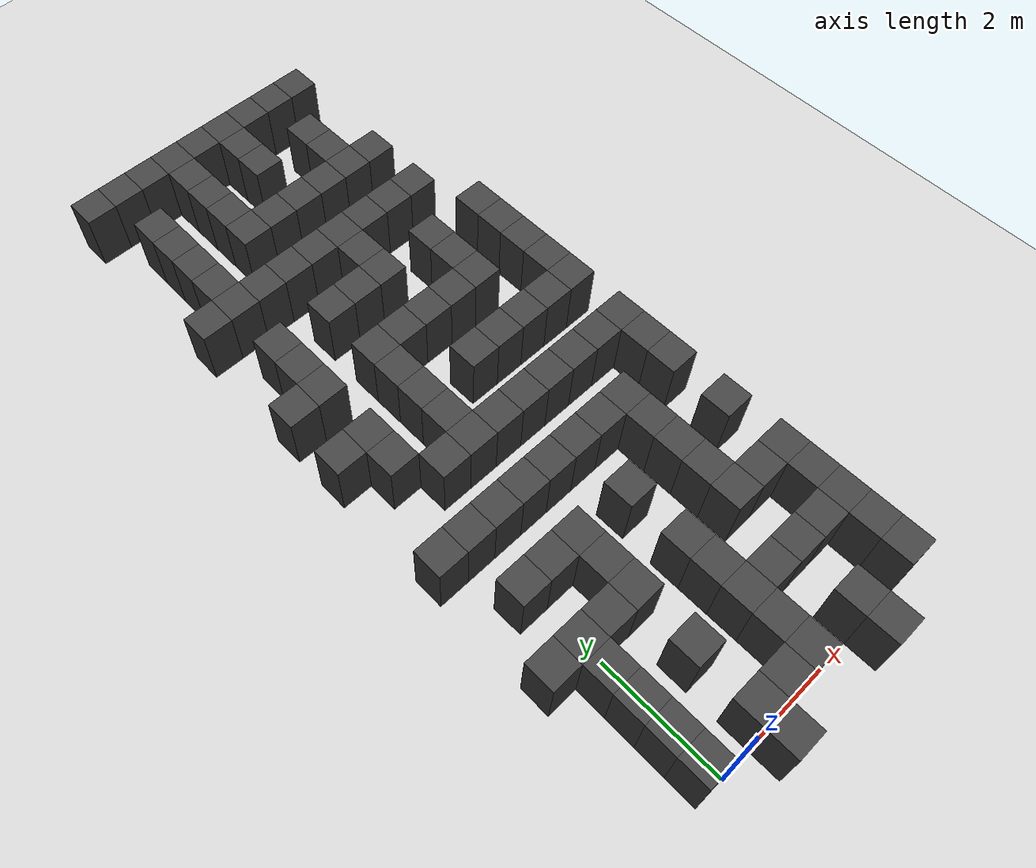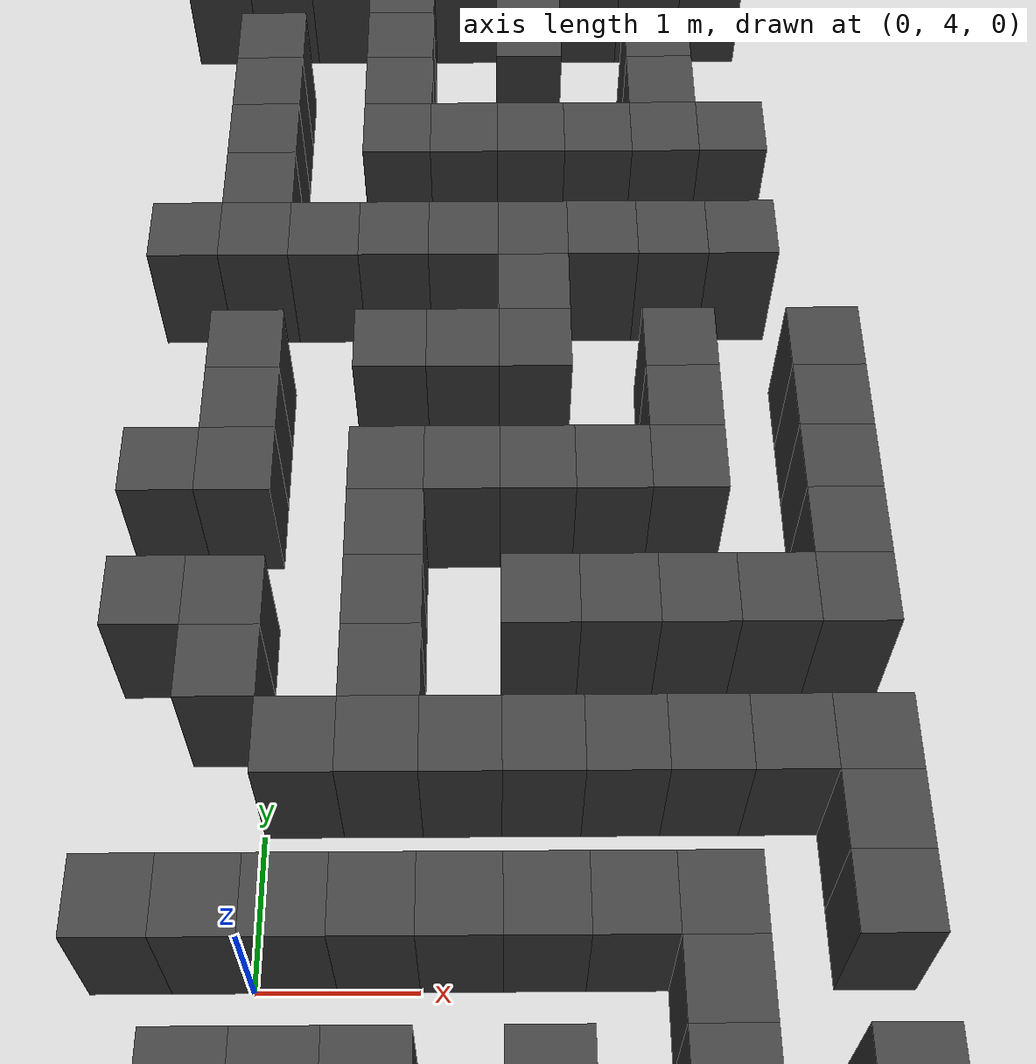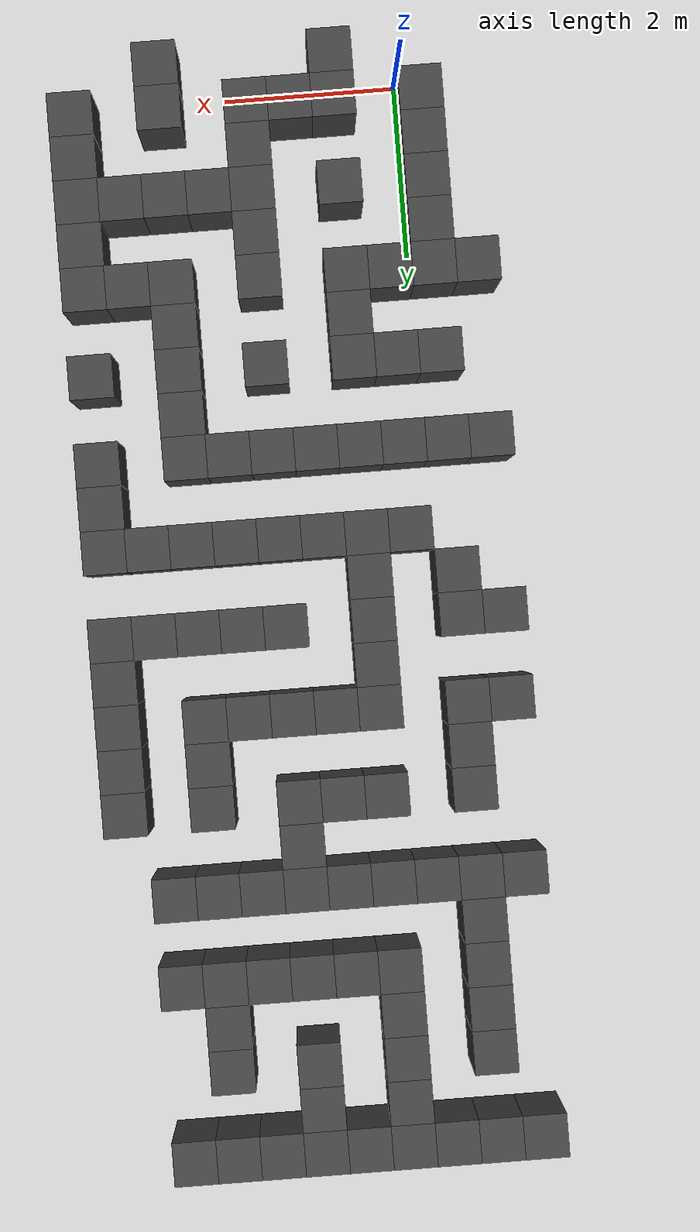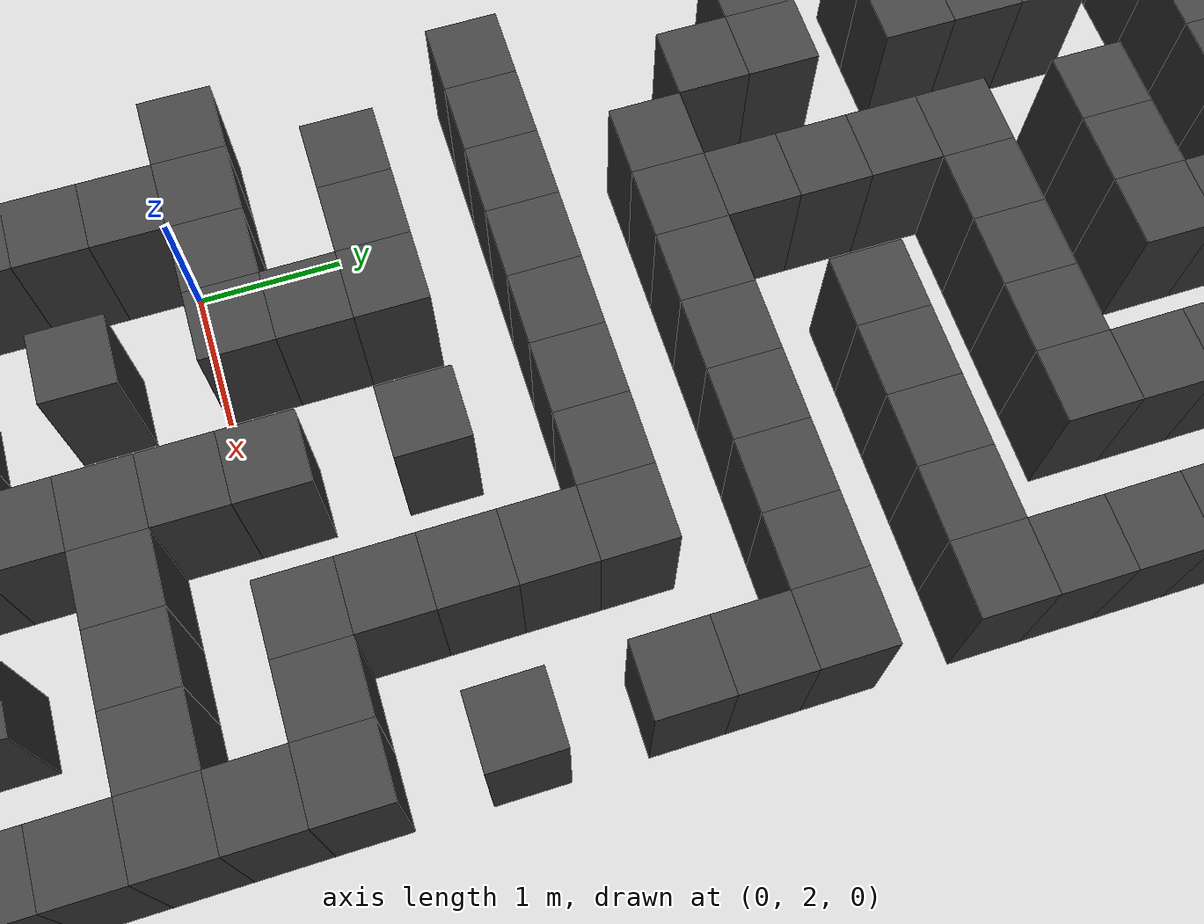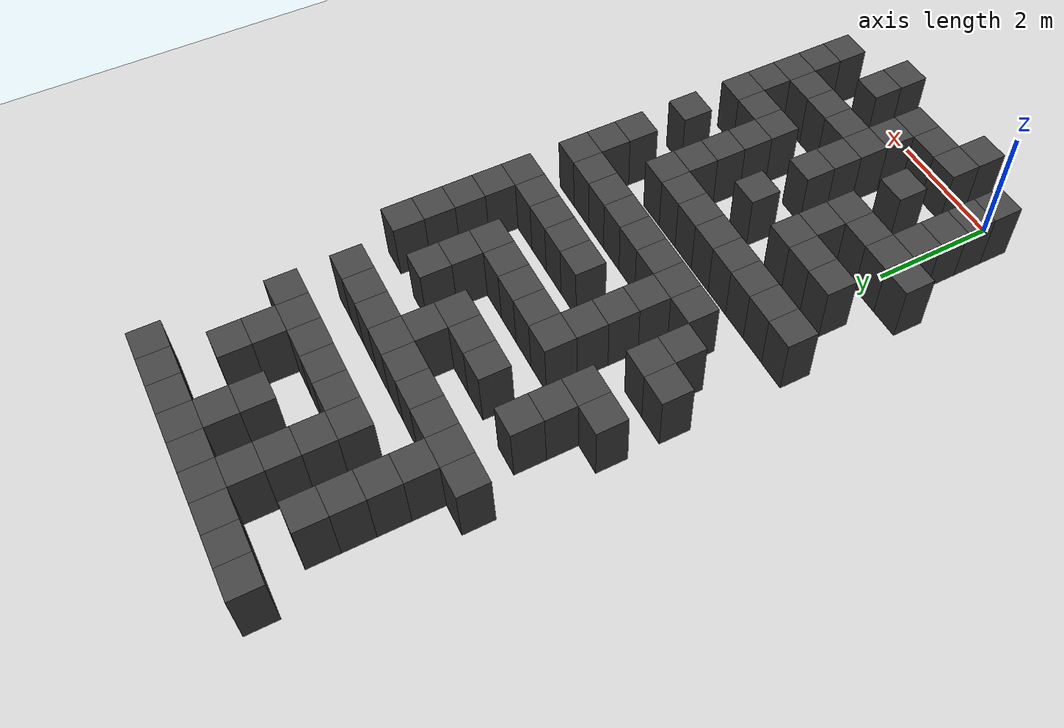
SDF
<sdf version="1.7">
 <world name="map_19217">
  <model name="ground_plane">
   <static>true</static>
   <link name="link">
    <collision name="collision">
     <geometry><plane><normal>0 0 1</normal><size>200 200</size></plane></geometry>
    </collision>
    <visual name="visual">
     <geometry><plane><normal>0 0 1</normal><size>200 200</size></plane></geometry>
     <material><ambient>0.8 0.8 0.8 1</ambient><diffuse>0.8 0.8 0.8 1</diffuse></material>
    </visual>
   </link>
  </model>
  <model name="maze_environment">
   <static>true</static>
   <link name="wall_23">
    <pose>-0.750 12.250 0.500 0 0 0</pose>
    <collision name="col"><geometry><box><size>0.5 0.5 1.0</size></box></geometry></collision>
    <visual name="vis">
     <geometry><box><size>0.5 0.5 1.0</size></box></geometry>
     <material><ambient>0.15 0.15 0.15 1</ambient><diffuse>0.25 0.25 0.25 1</diffuse></material>
    </visual>
   </link>
   <link name="wall_24">
    <pose>-0.250 12.250 0.500 0 0 0</pose>
    <collision name="col"><geometry><box><size>0.5 0.5 1.0</size></box></geometry></collision>
    <visual name="vis">
     <geometry><box><size>0.5 0.5 1.0</size></box></geometry>
     <material><ambient>0.15 0.15 0.15 1</ambient><diffuse>0.25 0.25 0.25 1</diffuse></material>
    </visual>
   </link>
   <link name="wall_25">
    <pose>0.250 12.250 0.500 0 0 0</pose>
    <collision name="col"><geometry><box><size>0.5 0.5 1.0</size></box></geometry></collision>
    <visual name="vis">
     <geometry><box><size>0.5 0.5 1.0</size></box></geometry>
     <material><ambient>0.15 0.15 0.15 1</ambient><diffuse>0.25 0.25 0.25 1</diffuse></material>
    </visual>
   </link>
   <link name="wall_26">
    <pose>0.750 12.250 0.500 0 0 0</pose>
    <collision name="col"><geometry><box><size>0.5 0.5 1.0</size></box></geometry></collision>
    <visual name="vis">
     <geometry><box><size>0.5 0.5 1.0</size></box></geometry>
     <material><ambient>0.15 0.15 0.15 1</ambient><diffuse>0.25 0.25 0.25 1</diffuse></material>
    </visual>
   </link>
   <link name="wall_27">
    <pose>1.250 12.250 0.500 0 0 0</pose>
    <collision name="col"><geometry><box><size>0.5 0.5 1.0</size></box></geometry></collision>
    <visual name="vis">
     <geometry><box><size>0.5 0.5 1.0</size></box></geometry>
     <material><ambient>0.15 0.15 0.15 1</ambient><diffuse>0.25 0.25 0.25 1</diffuse></material>
    </visual>
   </link>
   <link name="wall_28">
    <pose>1.750 12.250 0.500 0 0 0</pose>
    <collision name="col"><geometry><box><size>0.5 0.5 1.0</size></box></geometry></collision>
    <visual name="vis">
     <geometry><box><size>0.5 0.5 1.0</size></box></geometry>
     <material><ambient>0.15 0.15 0.15 1</ambient><diffuse>0.25 0.25 0.25 1</diffuse></material>
    </visual>
   </link>
   <link name="wall_29">
    <pose>2.250 12.250 0.500 0 0 0</pose>
    <collision name="col"><geometry><box><size>0.5 0.5 1.0</size></box></geometry></collision>
    <visual name="vis">
     <geometry><box><size>0.5 0.5 1.0</size></box></geometry>
     <material><ambient>0.15 0.15 0.15 1</ambient><diffuse>0.25 0.25 0.25 1</diffuse></material>
    </visual>
   </link>
   <link name="wall_30">
    <pose>2.750 12.250 0.500 0 0 0</pose>
    <collision name="col"><geometry><box><size>0.5 0.5 1.0</size></box></geometry></collision>
    <visual name="vis">
     <geometry><box><size>0.5 0.5 1.0</size></box></geometry>
     <material><ambient>0.15 0.15 0.15 1</ambient><diffuse>0.25 0.25 0.25 1</diffuse></material>
    </visual>
   </link>
   <link name="wall_31">
    <pose>3.250 12.250 0.500 0 0 0</pose>
    <collision name="col"><geometry><box><size>0.5 0.5 1.0</size></box></geometry></collision>
    <visual name="vis">
     <geometry><box><size>0.5 0.5 1.0</size></box></geometry>
     <material><ambient>0.15 0.15 0.15 1</ambient><diffuse>0.25 0.25 0.25 1</diffuse></material>
    </visual>
   </link>
   <link name="wall_54">
    <pose>0.750 11.750 0.500 0 0 0</pose>
    <collision name="col"><geometry><box><size>0.5 0.5 1.0</size></box></geometry></collision>
    <visual name="vis">
     <geometry><box><size>0.5 0.5 1.0</size></box></geometry>
     <material><ambient>0.15 0.15 0.15 1</ambient><diffuse>0.25 0.25 0.25 1</diffuse></material>
    </visual>
   </link>
   <link name="wall_55">
    <pose>1.750 11.750 0.500 0 0 0</pose>
    <collision name="col"><geometry><box><size>0.5 0.5 1.0</size></box></geometry></collision>
    <visual name="vis">
     <geometry><box><size>0.5 0.5 1.0</size></box></geometry>
     <material><ambient>0.15 0.15 0.15 1</ambient><diffuse>0.25 0.25 0.25 1</diffuse></material>
    </visual>
   </link>
   <link name="wall_74">
    <pose>-0.250 11.250 0.500 0 0 0</pose>
    <collision name="col"><geometry><box><size>0.5 0.5 1.0</size></box></geometry></collision>
    <visual name="vis">
     <geometry><box><size>0.5 0.5 1.0</size></box></geometry>
     <material><ambient>0.15 0.15 0.15 1</ambient><diffuse>0.25 0.25 0.25 1</diffuse></material>
    </visual>
   </link>
   <link name="wall_75">
    <pose>0.750 11.250 0.500 0 0 0</pose>
    <collision name="col"><geometry><box><size>0.5 0.5 1.0</size></box></geometry></collision>
    <visual name="vis">
     <geometry><box><size>0.5 0.5 1.0</size></box></geometry>
     <material><ambient>0.15 0.15 0.15 1</ambient><diffuse>0.25 0.25 0.25 1</diffuse></material>
    </visual>
   </link>
   <link name="wall_76">
    <pose>1.750 11.250 0.500 0 0 0</pose>
    <collision name="col"><geometry><box><size>0.5 0.5 1.0</size></box></geometry></collision>
    <visual name="vis">
     <geometry><box><size>0.5 0.5 1.0</size></box></geometry>
     <material><ambient>0.15 0.15 0.15 1</ambient><diffuse>0.25 0.25 0.25 1</diffuse></material>
    </visual>
   </link>
   <link name="wall_77">
    <pose>2.750 11.250 0.500 0 0 0</pose>
    <collision name="col"><geometry><box><size>0.5 0.5 1.0</size></box></geometry></collision>
    <visual name="vis">
     <geometry><box><size>0.5 0.5 1.0</size></box></geometry>
     <material><ambient>0.15 0.15 0.15 1</ambient><diffuse>0.25 0.25 0.25 1</diffuse></material>
    </visual>
   </link>
   <link name="wall_100">
    <pose>-0.250 10.750 0.500 0 0 0</pose>
    <collision name="col"><geometry><box><size>0.5 0.5 1.0</size></box></geometry></collision>
    <visual name="vis">
     <geometry><box><size>0.5 0.5 1.0</size></box></geometry>
     <material><ambient>0.15 0.15 0.15 1</ambient><diffuse>0.25 0.25 0.25 1</diffuse></material>
    </visual>
   </link>
   <link name="wall_101">
    <pose>0.750 10.750 0.500 0 0 0</pose>
    <collision name="col"><geometry><box><size>0.5 0.5 1.0</size></box></geometry></collision>
    <visual name="vis">
     <geometry><box><size>0.5 0.5 1.0</size></box></geometry>
     <material><ambient>0.15 0.15 0.15 1</ambient><diffuse>0.25 0.25 0.25 1</diffuse></material>
    </visual>
   </link>
   <link name="wall_102">
    <pose>2.750 10.750 0.500 0 0 0</pose>
    <collision name="col"><geometry><box><size>0.5 0.5 1.0</size></box></geometry></collision>
    <visual name="vis">
     <geometry><box><size>0.5 0.5 1.0</size></box></geometry>
     <material><ambient>0.15 0.15 0.15 1</ambient><diffuse>0.25 0.25 0.25 1</diffuse></material>
    </visual>
   </link>
   <link name="wall_125">
    <pose>-0.250 10.250 0.500 0 0 0</pose>
    <collision name="col"><geometry><box><size>0.5 0.5 1.0</size></box></geometry></collision>
    <visual name="vis">
     <geometry><box><size>0.5 0.5 1.0</size></box></geometry>
     <material><ambient>0.15 0.15 0.15 1</ambient><diffuse>0.25 0.25 0.25 1</diffuse></material>
    </visual>
   </link>
   <link name="wall_126">
    <pose>0.750 10.250 0.500 0 0 0</pose>
    <collision name="col"><geometry><box><size>0.5 0.5 1.0</size></box></geometry></collision>
    <visual name="vis">
     <geometry><box><size>0.5 0.5 1.0</size></box></geometry>
     <material><ambient>0.15 0.15 0.15 1</ambient><diffuse>0.25 0.25 0.25 1</diffuse></material>
    </visual>
   </link>
   <link name="wall_127">
    <pose>1.250 10.250 0.500 0 0 0</pose>
    <collision name="col"><geometry><box><size>0.5 0.5 1.0</size></box></geometry></collision>
    <visual name="vis">
     <geometry><box><size>0.5 0.5 1.0</size></box></geometry>
     <material><ambient>0.15 0.15 0.15 1</ambient><diffuse>0.25 0.25 0.25 1</diffuse></material>
    </visual>
   </link>
   <link name="wall_128">
    <pose>1.750 10.250 0.500 0 0 0</pose>
    <collision name="col"><geometry><box><size>0.5 0.5 1.0</size></box></geometry></collision>
    <visual name="vis">
     <geometry><box><size>0.5 0.5 1.0</size></box></geometry>
     <material><ambient>0.15 0.15 0.15 1</ambient><diffuse>0.25 0.25 0.25 1</diffuse></material>
    </visual>
   </link>
   <link name="wall_129">
    <pose>2.250 10.250 0.500 0 0 0</pose>
    <collision name="col"><geometry><box><size>0.5 0.5 1.0</size></box></geometry></collision>
    <visual name="vis">
     <geometry><box><size>0.5 0.5 1.0</size></box></geometry>
     <material><ambient>0.15 0.15 0.15 1</ambient><diffuse>0.25 0.25 0.25 1</diffuse></material>
    </visual>
   </link>
   <link name="wall_130">
    <pose>2.750 10.250 0.500 0 0 0</pose>
    <collision name="col"><geometry><box><size>0.5 0.5 1.0</size></box></geometry></collision>
    <visual name="vis">
     <geometry><box><size>0.5 0.5 1.0</size></box></geometry>
     <material><ambient>0.15 0.15 0.15 1</ambient><diffuse>0.25 0.25 0.25 1</diffuse></material>
    </visual>
   </link>
   <link name="wall_131">
    <pose>3.250 10.250 0.500 0 0 0</pose>
    <collision name="col"><geometry><box><size>0.5 0.5 1.0</size></box></geometry></collision>
    <visual name="vis">
     <geometry><box><size>0.5 0.5 1.0</size></box></geometry>
     <material><ambient>0.15 0.15 0.15 1</ambient><diffuse>0.25 0.25 0.25 1</diffuse></material>
    </visual>
   </link>
   <link name="wall_152">
    <pose>-0.250 9.750 0.500 0 0 0</pose>
    <collision name="col"><geometry><box><size>0.5 0.5 1.0</size></box></geometry></collision>
    <visual name="vis">
     <geometry><box><size>0.5 0.5 1.0</size></box></geometry>
     <material><ambient>0.15 0.15 0.15 1</ambient><diffuse>0.25 0.25 0.25 1</diffuse></material>
    </visual>
   </link>
   <link name="wall_176">
    <pose>-0.750 9.250 0.500 0 0 0</pose>
    <collision name="col"><geometry><box><size>0.5 0.5 1.0</size></box></geometry></collision>
    <visual name="vis">
     <geometry><box><size>0.5 0.5 1.0</size></box></geometry>
     <material><ambient>0.15 0.15 0.15 1</ambient><diffuse>0.25 0.25 0.25 1</diffuse></material>
    </visual>
   </link>
   <link name="wall_177">
    <pose>-0.250 9.250 0.500 0 0 0</pose>
    <collision name="col"><geometry><box><size>0.5 0.5 1.0</size></box></geometry></collision>
    <visual name="vis">
     <geometry><box><size>0.5 0.5 1.0</size></box></geometry>
     <material><ambient>0.15 0.15 0.15 1</ambient><diffuse>0.25 0.25 0.25 1</diffuse></material>
    </visual>
   </link>
   <link name="wall_178">
    <pose>0.250 9.250 0.500 0 0 0</pose>
    <collision name="col"><geometry><box><size>0.5 0.5 1.0</size></box></geometry></collision>
    <visual name="vis">
     <geometry><box><size>0.5 0.5 1.0</size></box></geometry>
     <material><ambient>0.15 0.15 0.15 1</ambient><diffuse>0.25 0.25 0.25 1</diffuse></material>
    </visual>
   </link>
   <link name="wall_179">
    <pose>0.750 9.250 0.500 0 0 0</pose>
    <collision name="col"><geometry><box><size>0.5 0.5 1.0</size></box></geometry></collision>
    <visual name="vis">
     <geometry><box><size>0.5 0.5 1.0</size></box></geometry>
     <material><ambient>0.15 0.15 0.15 1</ambient><diffuse>0.25 0.25 0.25 1</diffuse></material>
    </visual>
   </link>
   <link name="wall_180">
    <pose>1.250 9.250 0.500 0 0 0</pose>
    <collision name="col"><geometry><box><size>0.5 0.5 1.0</size></box></geometry></collision>
    <visual name="vis">
     <geometry><box><size>0.5 0.5 1.0</size></box></geometry>
     <material><ambient>0.15 0.15 0.15 1</ambient><diffuse>0.25 0.25 0.25 1</diffuse></material>
    </visual>
   </link>
   <link name="wall_181">
    <pose>1.750 9.250 0.500 0 0 0</pose>
    <collision name="col"><geometry><box><size>0.5 0.5 1.0</size></box></geometry></collision>
    <visual name="vis">
     <geometry><box><size>0.5 0.5 1.0</size></box></geometry>
     <material><ambient>0.15 0.15 0.15 1</ambient><diffuse>0.25 0.25 0.25 1</diffuse></material>
    </visual>
   </link>
   <link name="wall_182">
    <pose>2.250 9.250 0.500 0 0 0</pose>
    <collision name="col"><geometry><box><size>0.5 0.5 1.0</size></box></geometry></collision>
    <visual name="vis">
     <geometry><box><size>0.5 0.5 1.0</size></box></geometry>
     <material><ambient>0.15 0.15 0.15 1</ambient><diffuse>0.25 0.25 0.25 1</diffuse></material>
    </visual>
   </link>
   <link name="wall_183">
    <pose>2.750 9.250 0.500 0 0 0</pose>
    <collision name="col"><geometry><box><size>0.5 0.5 1.0</size></box></geometry></collision>
    <visual name="vis">
     <geometry><box><size>0.5 0.5 1.0</size></box></geometry>
     <material><ambient>0.15 0.15 0.15 1</ambient><diffuse>0.25 0.25 0.25 1</diffuse></material>
    </visual>
   </link>
   <link name="wall_184">
    <pose>3.250 9.250 0.500 0 0 0</pose>
    <collision name="col"><geometry><box><size>0.5 0.5 1.0</size></box></geometry></collision>
    <visual name="vis">
     <geometry><box><size>0.5 0.5 1.0</size></box></geometry>
     <material><ambient>0.15 0.15 0.15 1</ambient><diffuse>0.25 0.25 0.25 1</diffuse></material>
    </visual>
   </link>
   <link name="wall_206">
    <pose>1.750 8.750 0.500 0 0 0</pose>
    <collision name="col"><geometry><box><size>0.5 0.5 1.0</size></box></geometry></collision>
    <visual name="vis">
     <geometry><box><size>0.5 0.5 1.0</size></box></geometry>
     <material><ambient>0.15 0.15 0.15 1</ambient><diffuse>0.25 0.25 0.25 1</diffuse></material>
    </visual>
   </link>
   <link name="wall_228">
    <pose>-0.250 8.250 0.500 0 0 0</pose>
    <collision name="col"><geometry><box><size>0.5 0.5 1.0</size></box></geometry></collision>
    <visual name="vis">
     <geometry><box><size>0.5 0.5 1.0</size></box></geometry>
     <material><ambient>0.15 0.15 0.15 1</ambient><diffuse>0.25 0.25 0.25 1</diffuse></material>
    </visual>
   </link>
   <link name="wall_229">
    <pose>0.750 8.250 0.500 0 0 0</pose>
    <collision name="col"><geometry><box><size>0.5 0.5 1.0</size></box></geometry></collision>
    <visual name="vis">
     <geometry><box><size>0.5 0.5 1.0</size></box></geometry>
     <material><ambient>0.15 0.15 0.15 1</ambient><diffuse>0.25 0.25 0.25 1</diffuse></material>
    </visual>
   </link>
   <link name="wall_230">
    <pose>1.250 8.250 0.500 0 0 0</pose>
    <collision name="col"><geometry><box><size>0.5 0.5 1.0</size></box></geometry></collision>
    <visual name="vis">
     <geometry><box><size>0.5 0.5 1.0</size></box></geometry>
     <material><ambient>0.15 0.15 0.15 1</ambient><diffuse>0.25 0.25 0.25 1</diffuse></material>
    </visual>
   </link>
   <link name="wall_231">
    <pose>1.750 8.250 0.500 0 0 0</pose>
    <collision name="col"><geometry><box><size>0.5 0.5 1.0</size></box></geometry></collision>
    <visual name="vis">
     <geometry><box><size>0.5 0.5 1.0</size></box></geometry>
     <material><ambient>0.15 0.15 0.15 1</ambient><diffuse>0.25 0.25 0.25 1</diffuse></material>
    </visual>
   </link>
   <link name="wall_232">
    <pose>2.750 8.250 0.500 0 0 0</pose>
    <collision name="col"><geometry><box><size>0.5 0.5 1.0</size></box></geometry></collision>
    <visual name="vis">
     <geometry><box><size>0.5 0.5 1.0</size></box></geometry>
     <material><ambient>0.15 0.15 0.15 1</ambient><diffuse>0.25 0.25 0.25 1</diffuse></material>
    </visual>
   </link>
   <link name="wall_233">
    <pose>3.750 8.250 0.500 0 0 0</pose>
    <collision name="col"><geometry><box><size>0.5 0.5 1.0</size></box></geometry></collision>
    <visual name="vis">
     <geometry><box><size>0.5 0.5 1.0</size></box></geometry>
     <material><ambient>0.15 0.15 0.15 1</ambient><diffuse>0.25 0.25 0.25 1</diffuse></material>
    </visual>
   </link>
   <link name="wall_254">
    <pose>-0.250 7.750 0.500 0 0 0</pose>
    <collision name="col"><geometry><box><size>0.5 0.5 1.0</size></box></geometry></collision>
    <visual name="vis">
     <geometry><box><size>0.5 0.5 1.0</size></box></geometry>
     <material><ambient>0.15 0.15 0.15 1</ambient><diffuse>0.25 0.25 0.25 1</diffuse></material>
    </visual>
   </link>
   <link name="wall_255">
    <pose>2.750 7.750 0.500 0 0 0</pose>
    <collision name="col"><geometry><box><size>0.5 0.5 1.0</size></box></geometry></collision>
    <visual name="vis">
     <geometry><box><size>0.5 0.5 1.0</size></box></geometry>
     <material><ambient>0.15 0.15 0.15 1</ambient><diffuse>0.25 0.25 0.25 1</diffuse></material>
    </visual>
   </link>
   <link name="wall_256">
    <pose>3.750 7.750 0.500 0 0 0</pose>
    <collision name="col"><geometry><box><size>0.5 0.5 1.0</size></box></geometry></collision>
    <visual name="vis">
     <geometry><box><size>0.5 0.5 1.0</size></box></geometry>
     <material><ambient>0.15 0.15 0.15 1</ambient><diffuse>0.25 0.25 0.25 1</diffuse></material>
    </visual>
   </link>
   <link name="wall_277">
    <pose>-0.750 7.250 0.500 0 0 0</pose>
    <collision name="col"><geometry><box><size>0.5 0.5 1.0</size></box></geometry></collision>
    <visual name="vis">
     <geometry><box><size>0.5 0.5 1.0</size></box></geometry>
     <material><ambient>0.15 0.15 0.15 1</ambient><diffuse>0.25 0.25 0.25 1</diffuse></material>
    </visual>
   </link>
   <link name="wall_278">
    <pose>-0.250 7.250 0.500 0 0 0</pose>
    <collision name="col"><geometry><box><size>0.5 0.5 1.0</size></box></geometry></collision>
    <visual name="vis">
     <geometry><box><size>0.5 0.5 1.0</size></box></geometry>
     <material><ambient>0.15 0.15 0.15 1</ambient><diffuse>0.25 0.25 0.25 1</diffuse></material>
    </visual>
   </link>
   <link name="wall_279">
    <pose>0.750 7.250 0.500 0 0 0</pose>
    <collision name="col"><geometry><box><size>0.5 0.5 1.0</size></box></geometry></collision>
    <visual name="vis">
     <geometry><box><size>0.5 0.5 1.0</size></box></geometry>
     <material><ambient>0.15 0.15 0.15 1</ambient><diffuse>0.25 0.25 0.25 1</diffuse></material>
    </visual>
   </link>
   <link name="wall_280">
    <pose>1.250 7.250 0.500 0 0 0</pose>
    <collision name="col"><geometry><box><size>0.5 0.5 1.0</size></box></geometry></collision>
    <visual name="vis">
     <geometry><box><size>0.5 0.5 1.0</size></box></geometry>
     <material><ambient>0.15 0.15 0.15 1</ambient><diffuse>0.25 0.25 0.25 1</diffuse></material>
    </visual>
   </link>
   <link name="wall_281">
    <pose>1.750 7.250 0.500 0 0 0</pose>
    <collision name="col"><geometry><box><size>0.5 0.5 1.0</size></box></geometry></collision>
    <visual name="vis">
     <geometry><box><size>0.5 0.5 1.0</size></box></geometry>
     <material><ambient>0.15 0.15 0.15 1</ambient><diffuse>0.25 0.25 0.25 1</diffuse></material>
    </visual>
   </link>
   <link name="wall_282">
    <pose>2.250 7.250 0.500 0 0 0</pose>
    <collision name="col"><geometry><box><size>0.5 0.5 1.0</size></box></geometry></collision>
    <visual name="vis">
     <geometry><box><size>0.5 0.5 1.0</size></box></geometry>
     <material><ambient>0.15 0.15 0.15 1</ambient><diffuse>0.25 0.25 0.25 1</diffuse></material>
    </visual>
   </link>
   <link name="wall_283">
    <pose>2.750 7.250 0.500 0 0 0</pose>
    <collision name="col"><geometry><box><size>0.5 0.5 1.0</size></box></geometry></collision>
    <visual name="vis">
     <geometry><box><size>0.5 0.5 1.0</size></box></geometry>
     <material><ambient>0.15 0.15 0.15 1</ambient><diffuse>0.25 0.25 0.25 1</diffuse></material>
    </visual>
   </link>
   <link name="wall_284">
    <pose>3.750 7.250 0.500 0 0 0</pose>
    <collision name="col"><geometry><box><size>0.5 0.5 1.0</size></box></geometry></collision>
    <visual name="vis">
     <geometry><box><size>0.5 0.5 1.0</size></box></geometry>
     <material><ambient>0.15 0.15 0.15 1</ambient><diffuse>0.25 0.25 0.25 1</diffuse></material>
    </visual>
   </link>
   <link name="wall_304">
    <pose>0.750 6.750 0.500 0 0 0</pose>
    <collision name="col"><geometry><box><size>0.5 0.5 1.0</size></box></geometry></collision>
    <visual name="vis">
     <geometry><box><size>0.5 0.5 1.0</size></box></geometry>
     <material><ambient>0.15 0.15 0.15 1</ambient><diffuse>0.25 0.25 0.25 1</diffuse></material>
    </visual>
   </link>
   <link name="wall_305">
    <pose>3.750 6.750 0.500 0 0 0</pose>
    <collision name="col"><geometry><box><size>0.5 0.5 1.0</size></box></geometry></collision>
    <visual name="vis">
     <geometry><box><size>0.5 0.5 1.0</size></box></geometry>
     <material><ambient>0.15 0.15 0.15 1</ambient><diffuse>0.25 0.25 0.25 1</diffuse></material>
    </visual>
   </link>
   <link name="wall_329">
    <pose>-0.750 6.250 0.500 0 0 0</pose>
    <collision name="col"><geometry><box><size>0.5 0.5 1.0</size></box></geometry></collision>
    <visual name="vis">
     <geometry><box><size>0.5 0.5 1.0</size></box></geometry>
     <material><ambient>0.15 0.15 0.15 1</ambient><diffuse>0.25 0.25 0.25 1</diffuse></material>
    </visual>
   </link>
   <link name="wall_330">
    <pose>-0.250 6.250 0.500 0 0 0</pose>
    <collision name="col"><geometry><box><size>0.5 0.5 1.0</size></box></geometry></collision>
    <visual name="vis">
     <geometry><box><size>0.5 0.5 1.0</size></box></geometry>
     <material><ambient>0.15 0.15 0.15 1</ambient><diffuse>0.25 0.25 0.25 1</diffuse></material>
    </visual>
   </link>
   <link name="wall_331">
    <pose>0.750 6.250 0.500 0 0 0</pose>
    <collision name="col"><geometry><box><size>0.5 0.5 1.0</size></box></geometry></collision>
    <visual name="vis">
     <geometry><box><size>0.5 0.5 1.0</size></box></geometry>
     <material><ambient>0.15 0.15 0.15 1</ambient><diffuse>0.25 0.25 0.25 1</diffuse></material>
    </visual>
   </link>
   <link name="wall_332">
    <pose>1.750 6.250 0.500 0 0 0</pose>
    <collision name="col"><geometry><box><size>0.5 0.5 1.0</size></box></geometry></collision>
    <visual name="vis">
     <geometry><box><size>0.5 0.5 1.0</size></box></geometry>
     <material><ambient>0.15 0.15 0.15 1</ambient><diffuse>0.25 0.25 0.25 1</diffuse></material>
    </visual>
   </link>
   <link name="wall_333">
    <pose>2.250 6.250 0.500 0 0 0</pose>
    <collision name="col"><geometry><box><size>0.5 0.5 1.0</size></box></geometry></collision>
    <visual name="vis">
     <geometry><box><size>0.5 0.5 1.0</size></box></geometry>
     <material><ambient>0.15 0.15 0.15 1</ambient><diffuse>0.25 0.25 0.25 1</diffuse></material>
    </visual>
   </link>
   <link name="wall_334">
    <pose>2.750 6.250 0.500 0 0 0</pose>
    <collision name="col"><geometry><box><size>0.5 0.5 1.0</size></box></geometry></collision>
    <visual name="vis">
     <geometry><box><size>0.5 0.5 1.0</size></box></geometry>
     <material><ambient>0.15 0.15 0.15 1</ambient><diffuse>0.25 0.25 0.25 1</diffuse></material>
    </visual>
   </link>
   <link name="wall_335">
    <pose>3.250 6.250 0.500 0 0 0</pose>
    <collision name="col"><geometry><box><size>0.5 0.5 1.0</size></box></geometry></collision>
    <visual name="vis">
     <geometry><box><size>0.5 0.5 1.0</size></box></geometry>
     <material><ambient>0.15 0.15 0.15 1</ambient><diffuse>0.25 0.25 0.25 1</diffuse></material>
    </visual>
   </link>
   <link name="wall_336">
    <pose>3.750 6.250 0.500 0 0 0</pose>
    <collision name="col"><geometry><box><size>0.5 0.5 1.0</size></box></geometry></collision>
    <visual name="vis">
     <geometry><box><size>0.5 0.5 1.0</size></box></geometry>
     <material><ambient>0.15 0.15 0.15 1</ambient><diffuse>0.25 0.25 0.25 1</diffuse></material>
    </visual>
   </link>
   <link name="wall_357">
    <pose>-0.250 5.750 0.500 0 0 0</pose>
    <collision name="col"><geometry><box><size>0.5 0.5 1.0</size></box></geometry></collision>
    <visual name="vis">
     <geometry><box><size>0.5 0.5 1.0</size></box></geometry>
     <material><ambient>0.15 0.15 0.15 1</ambient><diffuse>0.25 0.25 0.25 1</diffuse></material>
    </visual>
   </link>
   <link name="wall_358">
    <pose>0.750 5.750 0.500 0 0 0</pose>
    <collision name="col"><geometry><box><size>0.5 0.5 1.0</size></box></geometry></collision>
    <visual name="vis">
     <geometry><box><size>0.5 0.5 1.0</size></box></geometry>
     <material><ambient>0.15 0.15 0.15 1</ambient><diffuse>0.25 0.25 0.25 1</diffuse></material>
    </visual>
   </link>
   <link name="wall_379">
    <pose>0.250 5.250 0.500 0 0 0</pose>
    <collision name="col"><geometry><box><size>0.5 0.5 1.0</size></box></geometry></collision>
    <visual name="vis">
     <geometry><box><size>0.5 0.5 1.0</size></box></geometry>
     <material><ambient>0.15 0.15 0.15 1</ambient><diffuse>0.25 0.25 0.25 1</diffuse></material>
    </visual>
   </link>
   <link name="wall_380">
    <pose>0.750 5.250 0.500 0 0 0</pose>
    <collision name="col"><geometry><box><size>0.5 0.5 1.0</size></box></geometry></collision>
    <visual name="vis">
     <geometry><box><size>0.5 0.5 1.0</size></box></geometry>
     <material><ambient>0.15 0.15 0.15 1</ambient><diffuse>0.25 0.25 0.25 1</diffuse></material>
    </visual>
   </link>
   <link name="wall_381">
    <pose>1.250 5.250 0.500 0 0 0</pose>
    <collision name="col"><geometry><box><size>0.5 0.5 1.0</size></box></geometry></collision>
    <visual name="vis">
     <geometry><box><size>0.5 0.5 1.0</size></box></geometry>
     <material><ambient>0.15 0.15 0.15 1</ambient><diffuse>0.25 0.25 0.25 1</diffuse></material>
    </visual>
   </link>
   <link name="wall_382">
    <pose>1.750 5.250 0.500 0 0 0</pose>
    <collision name="col"><geometry><box><size>0.5 0.5 1.0</size></box></geometry></collision>
    <visual name="vis">
     <geometry><box><size>0.5 0.5 1.0</size></box></geometry>
     <material><ambient>0.15 0.15 0.15 1</ambient><diffuse>0.25 0.25 0.25 1</diffuse></material>
    </visual>
   </link>
   <link name="wall_383">
    <pose>2.250 5.250 0.500 0 0 0</pose>
    <collision name="col"><geometry><box><size>0.5 0.5 1.0</size></box></geometry></collision>
    <visual name="vis">
     <geometry><box><size>0.5 0.5 1.0</size></box></geometry>
     <material><ambient>0.15 0.15 0.15 1</ambient><diffuse>0.25 0.25 0.25 1</diffuse></material>
    </visual>
   </link>
   <link name="wall_384">
    <pose>2.750 5.250 0.500 0 0 0</pose>
    <collision name="col"><geometry><box><size>0.5 0.5 1.0</size></box></geometry></collision>
    <visual name="vis">
     <geometry><box><size>0.5 0.5 1.0</size></box></geometry>
     <material><ambient>0.15 0.15 0.15 1</ambient><diffuse>0.25 0.25 0.25 1</diffuse></material>
    </visual>
   </link>
   <link name="wall_385">
    <pose>3.250 5.250 0.500 0 0 0</pose>
    <collision name="col"><geometry><box><size>0.5 0.5 1.0</size></box></geometry></collision>
    <visual name="vis">
     <geometry><box><size>0.5 0.5 1.0</size></box></geometry>
     <material><ambient>0.15 0.15 0.15 1</ambient><diffuse>0.25 0.25 0.25 1</diffuse></material>
    </visual>
   </link>
   <link name="wall_386">
    <pose>3.750 5.250 0.500 0 0 0</pose>
    <collision name="col"><geometry><box><size>0.5 0.5 1.0</size></box></geometry></collision>
    <visual name="vis">
     <geometry><box><size>0.5 0.5 1.0</size></box></geometry>
     <material><ambient>0.15 0.15 0.15 1</ambient><diffuse>0.25 0.25 0.25 1</diffuse></material>
    </visual>
   </link>
   <link name="wall_409">
    <pose>3.750 4.750 0.500 0 0 0</pose>
    <collision name="col"><geometry><box><size>0.5 0.5 1.0</size></box></geometry></collision>
    <visual name="vis">
     <geometry><box><size>0.5 0.5 1.0</size></box></geometry>
     <material><ambient>0.15 0.15 0.15 1</ambient><diffuse>0.25 0.25 0.25 1</diffuse></material>
    </visual>
   </link>
   <link name="wall_430">
    <pose>-0.750 4.250 0.500 0 0 0</pose>
    <collision name="col"><geometry><box><size>0.5 0.5 1.0</size></box></geometry></collision>
    <visual name="vis">
     <geometry><box><size>0.5 0.5 1.0</size></box></geometry>
     <material><ambient>0.15 0.15 0.15 1</ambient><diffuse>0.25 0.25 0.25 1</diffuse></material>
    </visual>
   </link>
   <link name="wall_431">
    <pose>-0.250 4.250 0.500 0 0 0</pose>
    <collision name="col"><geometry><box><size>0.5 0.5 1.0</size></box></geometry></collision>
    <visual name="vis">
     <geometry><box><size>0.5 0.5 1.0</size></box></geometry>
     <material><ambient>0.15 0.15 0.15 1</ambient><diffuse>0.25 0.25 0.25 1</diffuse></material>
    </visual>
   </link>
   <link name="wall_432">
    <pose>0.250 4.250 0.500 0 0 0</pose>
    <collision name="col"><geometry><box><size>0.5 0.5 1.0</size></box></geometry></collision>
    <visual name="vis">
     <geometry><box><size>0.5 0.5 1.0</size></box></geometry>
     <material><ambient>0.15 0.15 0.15 1</ambient><diffuse>0.25 0.25 0.25 1</diffuse></material>
    </visual>
   </link>
   <link name="wall_433">
    <pose>0.750 4.250 0.500 0 0 0</pose>
    <collision name="col"><geometry><box><size>0.5 0.5 1.0</size></box></geometry></collision>
    <visual name="vis">
     <geometry><box><size>0.5 0.5 1.0</size></box></geometry>
     <material><ambient>0.15 0.15 0.15 1</ambient><diffuse>0.25 0.25 0.25 1</diffuse></material>
    </visual>
   </link>
   <link name="wall_434">
    <pose>1.250 4.250 0.500 0 0 0</pose>
    <collision name="col"><geometry><box><size>0.5 0.5 1.0</size></box></geometry></collision>
    <visual name="vis">
     <geometry><box><size>0.5 0.5 1.0</size></box></geometry>
     <material><ambient>0.15 0.15 0.15 1</ambient><diffuse>0.25 0.25 0.25 1</diffuse></material>
    </visual>
   </link>
   <link name="wall_435">
    <pose>1.750 4.250 0.500 0 0 0</pose>
    <collision name="col"><geometry><box><size>0.5 0.5 1.0</size></box></geometry></collision>
    <visual name="vis">
     <geometry><box><size>0.5 0.5 1.0</size></box></geometry>
     <material><ambient>0.15 0.15 0.15 1</ambient><diffuse>0.25 0.25 0.25 1</diffuse></material>
    </visual>
   </link>
   <link name="wall_436">
    <pose>2.250 4.250 0.500 0 0 0</pose>
    <collision name="col"><geometry><box><size>0.5 0.5 1.0</size></box></geometry></collision>
    <visual name="vis">
     <geometry><box><size>0.5 0.5 1.0</size></box></geometry>
     <material><ambient>0.15 0.15 0.15 1</ambient><diffuse>0.25 0.25 0.25 1</diffuse></material>
    </visual>
   </link>
   <link name="wall_437">
    <pose>2.750 4.250 0.500 0 0 0</pose>
    <collision name="col"><geometry><box><size>0.5 0.5 1.0</size></box></geometry></collision>
    <visual name="vis">
     <geometry><box><size>0.5 0.5 1.0</size></box></geometry>
     <material><ambient>0.15 0.15 0.15 1</ambient><diffuse>0.25 0.25 0.25 1</diffuse></material>
    </visual>
   </link>
   <link name="wall_438">
    <pose>3.750 4.250 0.500 0 0 0</pose>
    <collision name="col"><geometry><box><size>0.5 0.5 1.0</size></box></geometry></collision>
    <visual name="vis">
     <geometry><box><size>0.5 0.5 1.0</size></box></geometry>
     <material><ambient>0.15 0.15 0.15 1</ambient><diffuse>0.25 0.25 0.25 1</diffuse></material>
    </visual>
   </link>
   <link name="wall_462">
    <pose>2.750 3.750 0.500 0 0 0</pose>
    <collision name="col"><geometry><box><size>0.5 0.5 1.0</size></box></geometry></collision>
    <visual name="vis">
     <geometry><box><size>0.5 0.5 1.0</size></box></geometry>
     <material><ambient>0.15 0.15 0.15 1</ambient><diffuse>0.25 0.25 0.25 1</diffuse></material>
    </visual>
   </link>
   <link name="wall_482">
    <pose>-0.250 3.250 0.500 0 0 0</pose>
    <collision name="col"><geometry><box><size>0.5 0.5 1.0</size></box></geometry></collision>
    <visual name="vis">
     <geometry><box><size>0.5 0.5 1.0</size></box></geometry>
     <material><ambient>0.15 0.15 0.15 1</ambient><diffuse>0.25 0.25 0.25 1</diffuse></material>
    </visual>
   </link>
   <link name="wall_483">
    <pose>0.250 3.250 0.500 0 0 0</pose>
    <collision name="col"><geometry><box><size>0.5 0.5 1.0</size></box></geometry></collision>
    <visual name="vis">
     <geometry><box><size>0.5 0.5 1.0</size></box></geometry>
     <material><ambient>0.15 0.15 0.15 1</ambient><diffuse>0.25 0.25 0.25 1</diffuse></material>
    </visual>
   </link>
   <link name="wall_484">
    <pose>0.750 3.250 0.500 0 0 0</pose>
    <collision name="col"><geometry><box><size>0.5 0.5 1.0</size></box></geometry></collision>
    <visual name="vis">
     <geometry><box><size>0.5 0.5 1.0</size></box></geometry>
     <material><ambient>0.15 0.15 0.15 1</ambient><diffuse>0.25 0.25 0.25 1</diffuse></material>
    </visual>
   </link>
   <link name="wall_485">
    <pose>1.750 3.250 0.500 0 0 0</pose>
    <collision name="col"><geometry><box><size>0.5 0.5 1.0</size></box></geometry></collision>
    <visual name="vis">
     <geometry><box><size>0.5 0.5 1.0</size></box></geometry>
     <material><ambient>0.15 0.15 0.15 1</ambient><diffuse>0.25 0.25 0.25 1</diffuse></material>
    </visual>
   </link>
   <link name="wall_486">
    <pose>2.750 3.250 0.500 0 0 0</pose>
    <collision name="col"><geometry><box><size>0.5 0.5 1.0</size></box></geometry></collision>
    <visual name="vis">
     <geometry><box><size>0.5 0.5 1.0</size></box></geometry>
     <material><ambient>0.15 0.15 0.15 1</ambient><diffuse>0.25 0.25 0.25 1</diffuse></material>
    </visual>
   </link>
   <link name="wall_487">
    <pose>3.750 3.250 0.500 0 0 0</pose>
    <collision name="col"><geometry><box><size>0.5 0.5 1.0</size></box></geometry></collision>
    <visual name="vis">
     <geometry><box><size>0.5 0.5 1.0</size></box></geometry>
     <material><ambient>0.15 0.15 0.15 1</ambient><diffuse>0.25 0.25 0.25 1</diffuse></material>
    </visual>
   </link>
   <link name="wall_505">
    <pose>0.750 2.750 0.500 0 0 0</pose>
    <collision name="col"><geometry><box><size>0.5 0.5 1.0</size></box></geometry></collision>
    <visual name="vis">
     <geometry><box><size>0.5 0.5 1.0</size></box></geometry>
     <material><ambient>0.15 0.15 0.15 1</ambient><diffuse>0.25 0.25 0.25 1</diffuse></material>
    </visual>
   </link>
   <link name="wall_506">
    <pose>2.750 2.750 0.500 0 0 0</pose>
    <collision name="col"><geometry><box><size>0.5 0.5 1.0</size></box></geometry></collision>
    <visual name="vis">
     <geometry><box><size>0.5 0.5 1.0</size></box></geometry>
     <material><ambient>0.15 0.15 0.15 1</ambient><diffuse>0.25 0.25 0.25 1</diffuse></material>
    </visual>
   </link>
   <link name="wall_531">
    <pose>-0.750 2.250 0.500 0 0 0</pose>
    <collision name="col"><geometry><box><size>0.5 0.5 1.0</size></box></geometry></collision>
    <visual name="vis">
     <geometry><box><size>0.5 0.5 1.0</size></box></geometry>
     <material><ambient>0.15 0.15 0.15 1</ambient><diffuse>0.25 0.25 0.25 1</diffuse></material>
    </visual>
   </link>
   <link name="wall_532">
    <pose>-0.250 2.250 0.500 0 0 0</pose>
    <collision name="col"><geometry><box><size>0.5 0.5 1.0</size></box></geometry></collision>
    <visual name="vis">
     <geometry><box><size>0.5 0.5 1.0</size></box></geometry>
     <material><ambient>0.15 0.15 0.15 1</ambient><diffuse>0.25 0.25 0.25 1</diffuse></material>
    </visual>
   </link>
   <link name="wall_533">
    <pose>0.250 2.250 0.500 0 0 0</pose>
    <collision name="col"><geometry><box><size>0.5 0.5 1.0</size></box></geometry></collision>
    <visual name="vis">
     <geometry><box><size>0.5 0.5 1.0</size></box></geometry>
     <material><ambient>0.15 0.15 0.15 1</ambient><diffuse>0.25 0.25 0.25 1</diffuse></material>
    </visual>
   </link>
   <link name="wall_534">
    <pose>0.750 2.250 0.500 0 0 0</pose>
    <collision name="col"><geometry><box><size>0.5 0.5 1.0</size></box></geometry></collision>
    <visual name="vis">
     <geometry><box><size>0.5 0.5 1.0</size></box></geometry>
     <material><ambient>0.15 0.15 0.15 1</ambient><diffuse>0.25 0.25 0.25 1</diffuse></material>
    </visual>
   </link>
   <link name="wall_535">
    <pose>1.750 2.250 0.500 0 0 0</pose>
    <collision name="col"><geometry><box><size>0.5 0.5 1.0</size></box></geometry></collision>
    <visual name="vis">
     <geometry><box><size>0.5 0.5 1.0</size></box></geometry>
     <material><ambient>0.15 0.15 0.15 1</ambient><diffuse>0.25 0.25 0.25 1</diffuse></material>
    </visual>
   </link>
   <link name="wall_536">
    <pose>2.750 2.250 0.500 0 0 0</pose>
    <collision name="col"><geometry><box><size>0.5 0.5 1.0</size></box></geometry></collision>
    <visual name="vis">
     <geometry><box><size>0.5 0.5 1.0</size></box></geometry>
     <material><ambient>0.15 0.15 0.15 1</ambient><diffuse>0.25 0.25 0.25 1</diffuse></material>
    </visual>
   </link>
   <link name="wall_537">
    <pose>3.250 2.250 0.500 0 0 0</pose>
    <collision name="col"><geometry><box><size>0.5 0.5 1.0</size></box></geometry></collision>
    <visual name="vis">
     <geometry><box><size>0.5 0.5 1.0</size></box></geometry>
     <material><ambient>0.15 0.15 0.15 1</ambient><diffuse>0.25 0.25 0.25 1</diffuse></material>
    </visual>
   </link>
   <link name="wall_538">
    <pose>3.750 2.250 0.500 0 0 0</pose>
    <collision name="col"><geometry><box><size>0.5 0.5 1.0</size></box></geometry></collision>
    <visual name="vis">
     <geometry><box><size>0.5 0.5 1.0</size></box></geometry>
     <material><ambient>0.15 0.15 0.15 1</ambient><diffuse>0.25 0.25 0.25 1</diffuse></material>
    </visual>
   </link>
   <link name="wall_557">
    <pose>-0.250 1.750 0.500 0 0 0</pose>
    <collision name="col"><geometry><box><size>0.5 0.5 1.0</size></box></geometry></collision>
    <visual name="vis">
     <geometry><box><size>0.5 0.5 1.0</size></box></geometry>
     <material><ambient>0.15 0.15 0.15 1</ambient><diffuse>0.25 0.25 0.25 1</diffuse></material>
    </visual>
   </link>
   <link name="wall_558">
    <pose>1.750 1.750 0.500 0 0 0</pose>
    <collision name="col"><geometry><box><size>0.5 0.5 1.0</size></box></geometry></collision>
    <visual name="vis">
     <geometry><box><size>0.5 0.5 1.0</size></box></geometry>
     <material><ambient>0.15 0.15 0.15 1</ambient><diffuse>0.25 0.25 0.25 1</diffuse></material>
    </visual>
   </link>
   <link name="wall_559">
    <pose>3.750 1.750 0.500 0 0 0</pose>
    <collision name="col"><geometry><box><size>0.5 0.5 1.0</size></box></geometry></collision>
    <visual name="vis">
     <geometry><box><size>0.5 0.5 1.0</size></box></geometry>
     <material><ambient>0.15 0.15 0.15 1</ambient><diffuse>0.25 0.25 0.25 1</diffuse></material>
    </visual>
   </link>
   <link name="wall_583">
    <pose>-0.250 1.250 0.500 0 0 0</pose>
    <collision name="col"><geometry><box><size>0.5 0.5 1.0</size></box></geometry></collision>
    <visual name="vis">
     <geometry><box><size>0.5 0.5 1.0</size></box></geometry>
     <material><ambient>0.15 0.15 0.15 1</ambient><diffuse>0.25 0.25 0.25 1</diffuse></material>
    </visual>
   </link>
   <link name="wall_584">
    <pose>0.750 1.250 0.500 0 0 0</pose>
    <collision name="col"><geometry><box><size>0.5 0.5 1.0</size></box></geometry></collision>
    <visual name="vis">
     <geometry><box><size>0.5 0.5 1.0</size></box></geometry>
     <material><ambient>0.15 0.15 0.15 1</ambient><diffuse>0.25 0.25 0.25 1</diffuse></material>
    </visual>
   </link>
   <link name="wall_585">
    <pose>1.750 1.250 0.500 0 0 0</pose>
    <collision name="col"><geometry><box><size>0.5 0.5 1.0</size></box></geometry></collision>
    <visual name="vis">
     <geometry><box><size>0.5 0.5 1.0</size></box></geometry>
     <material><ambient>0.15 0.15 0.15 1</ambient><diffuse>0.25 0.25 0.25 1</diffuse></material>
    </visual>
   </link>
   <link name="wall_586">
    <pose>2.250 1.250 0.500 0 0 0</pose>
    <collision name="col"><geometry><box><size>0.5 0.5 1.0</size></box></geometry></collision>
    <visual name="vis">
     <geometry><box><size>0.5 0.5 1.0</size></box></geometry>
     <material><ambient>0.15 0.15 0.15 1</ambient><diffuse>0.25 0.25 0.25 1</diffuse></material>
    </visual>
   </link>
   <link name="wall_587">
    <pose>2.750 1.250 0.500 0 0 0</pose>
    <collision name="col"><geometry><box><size>0.5 0.5 1.0</size></box></geometry></collision>
    <visual name="vis">
     <geometry><box><size>0.5 0.5 1.0</size></box></geometry>
     <material><ambient>0.15 0.15 0.15 1</ambient><diffuse>0.25 0.25 0.25 1</diffuse></material>
    </visual>
   </link>
   <link name="wall_588">
    <pose>3.250 1.250 0.500 0 0 0</pose>
    <collision name="col"><geometry><box><size>0.5 0.5 1.0</size></box></geometry></collision>
    <visual name="vis">
     <geometry><box><size>0.5 0.5 1.0</size></box></geometry>
     <material><ambient>0.15 0.15 0.15 1</ambient><diffuse>0.25 0.25 0.25 1</diffuse></material>
    </visual>
   </link>
   <link name="wall_589">
    <pose>3.750 1.250 0.500 0 0 0</pose>
    <collision name="col"><geometry><box><size>0.5 0.5 1.0</size></box></geometry></collision>
    <visual name="vis">
     <geometry><box><size>0.5 0.5 1.0</size></box></geometry>
     <material><ambient>0.15 0.15 0.15 1</ambient><diffuse>0.25 0.25 0.25 1</diffuse></material>
    </visual>
   </link>
   <link name="wall_608">
    <pose>-0.250 0.750 0.500 0 0 0</pose>
    <collision name="col"><geometry><box><size>0.5 0.5 1.0</size></box></geometry></collision>
    <visual name="vis">
     <geometry><box><size>0.5 0.5 1.0</size></box></geometry>
     <material><ambient>0.15 0.15 0.15 1</ambient><diffuse>0.25 0.25 0.25 1</diffuse></material>
    </visual>
   </link>
   <link name="wall_609">
    <pose>1.750 0.750 0.500 0 0 0</pose>
    <collision name="col"><geometry><box><size>0.5 0.5 1.0</size></box></geometry></collision>
    <visual name="vis">
     <geometry><box><size>0.5 0.5 1.0</size></box></geometry>
     <material><ambient>0.15 0.15 0.15 1</ambient><diffuse>0.25 0.25 0.25 1</diffuse></material>
    </visual>
   </link>
   <link name="wall_610">
    <pose>3.750 0.750 0.500 0 0 0</pose>
    <collision name="col"><geometry><box><size>0.5 0.5 1.0</size></box></geometry></collision>
    <visual name="vis">
     <geometry><box><size>0.5 0.5 1.0</size></box></geometry>
     <material><ambient>0.15 0.15 0.15 1</ambient><diffuse>0.25 0.25 0.25 1</diffuse></material>
    </visual>
   </link>
   <link name="wall_632">
    <pose>-0.250 0.250 0.500 0 0 0</pose>
    <collision name="col"><geometry><box><size>0.5 0.5 1.0</size></box></geometry></collision>
    <visual name="vis">
     <geometry><box><size>0.5 0.5 1.0</size></box></geometry>
     <material><ambient>0.15 0.15 0.15 1</ambient><diffuse>0.25 0.25 0.25 1</diffuse></material>
    </visual>
   </link>
   <link name="wall_633">
    <pose>0.750 0.250 0.500 0 0 0</pose>
    <collision name="col"><geometry><box><size>0.5 0.5 1.0</size></box></geometry></collision>
    <visual name="vis">
     <geometry><box><size>0.5 0.5 1.0</size></box></geometry>
     <material><ambient>0.15 0.15 0.15 1</ambient><diffuse>0.25 0.25 0.25 1</diffuse></material>
    </visual>
   </link>
   <link name="wall_634">
    <pose>1.250 0.250 0.500 0 0 0</pose>
    <collision name="col"><geometry><box><size>0.5 0.5 1.0</size></box></geometry></collision>
    <visual name="vis">
     <geometry><box><size>0.5 0.5 1.0</size></box></geometry>
     <material><ambient>0.15 0.15 0.15 1</ambient><diffuse>0.25 0.25 0.25 1</diffuse></material>
    </visual>
   </link>
   <link name="wall_635">
    <pose>1.750 0.250 0.500 0 0 0</pose>
    <collision name="col"><geometry><box><size>0.5 0.5 1.0</size></box></geometry></collision>
    <visual name="vis">
     <geometry><box><size>0.5 0.5 1.0</size></box></geometry>
     <material><ambient>0.15 0.15 0.15 1</ambient><diffuse>0.25 0.25 0.25 1</diffuse></material>
    </visual>
   </link>
   <link name="wall_636">
    <pose>2.750 0.250 0.500 0 0 0</pose>
    <collision name="col"><geometry><box><size>0.5 0.5 1.0</size></box></geometry></collision>
    <visual name="vis">
     <geometry><box><size>0.5 0.5 1.0</size></box></geometry>
     <material><ambient>0.15 0.15 0.15 1</ambient><diffuse>0.25 0.25 0.25 1</diffuse></material>
    </visual>
   </link>
   <link name="wall_637">
    <pose>3.750 0.250 0.500 0 0 0</pose>
    <collision name="col"><geometry><box><size>0.5 0.5 1.0</size></box></geometry></collision>
    <visual name="vis">
     <geometry><box><size>0.5 0.5 1.0</size></box></geometry>
     <material><ambient>0.15 0.15 0.15 1</ambient><diffuse>0.25 0.25 0.25 1</diffuse></material>
    </visual>
   </link>
   <link name="wall_660">
    <pose>0.750 -0.250 0.500 0 0 0</pose>
    <collision name="col"><geometry><box><size>0.5 0.5 1.0</size></box></geometry></collision>
    <visual name="vis">
     <geometry><box><size>0.5 0.5 1.0</size></box></geometry>
     <material><ambient>0.15 0.15 0.15 1</ambient><diffuse>0.25 0.25 0.25 1</diffuse></material>
    </visual>
   </link>
   <link name="wall_661">
    <pose>2.750 -0.250 0.500 0 0 0</pose>
    <collision name="col"><geometry><box><size>0.5 0.5 1.0</size></box></geometry></collision>
    <visual name="vis">
     <geometry><box><size>0.5 0.5 1.0</size></box></geometry>
     <material><ambient>0.15 0.15 0.15 1</ambient><diffuse>0.25 0.25 0.25 1</diffuse></material>
    </visual>
   </link>
  </model>
 </world>
</sdf>
